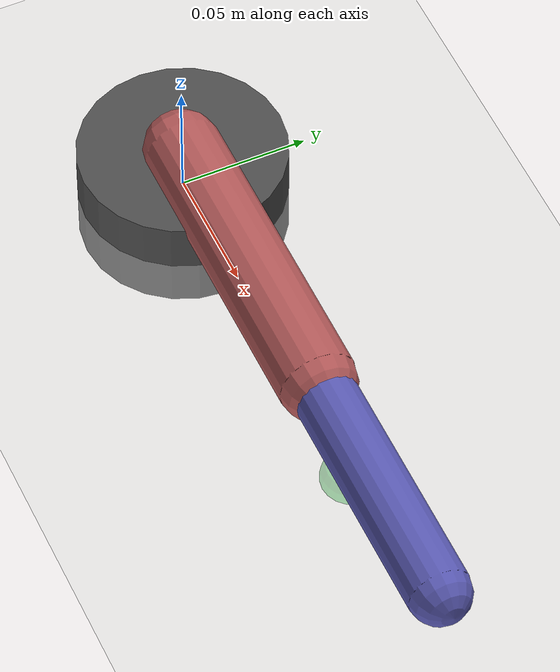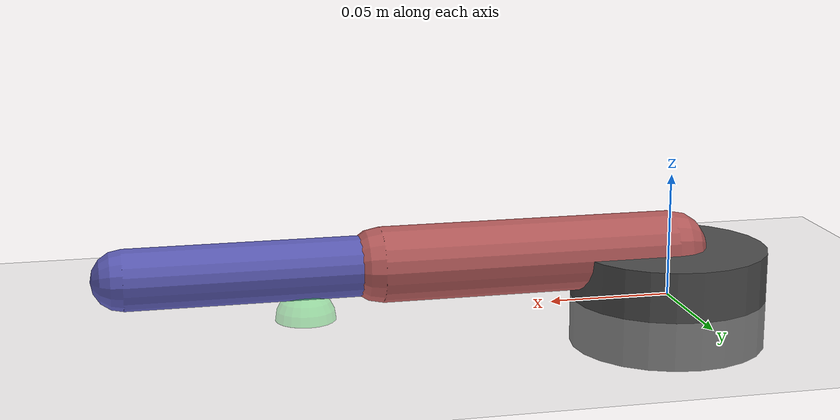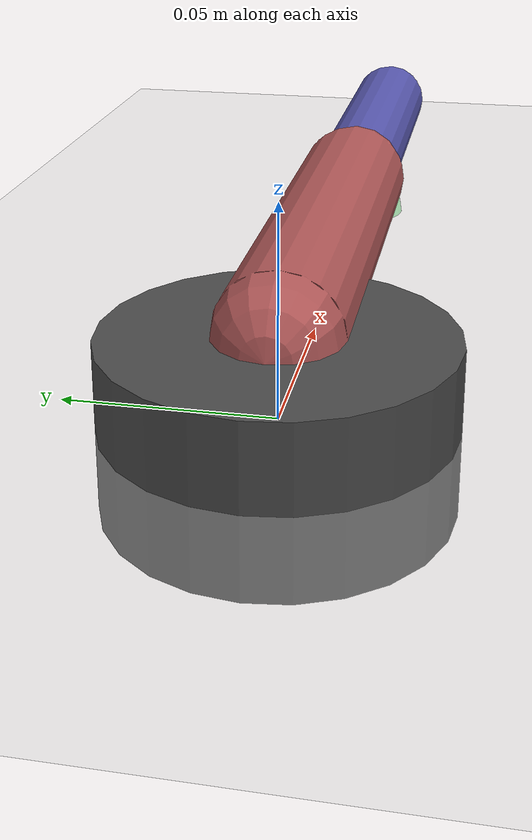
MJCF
<mujoco model="two_joint_arm">
  <option gravity="0 0 0" timestep="0.002"/>

  <worldbody>
    <light pos="0 0 1" dir="0 0 -1"/>
    <geom type="plane" size="0.35 0.35 0.05" rgba="0.85 0.85 0.85 1" contype="0" conaffinity="0"/>
    <camera name="overhead" pos="0 0 0.55" xyaxes="1 0 0 0 1 0"/>

    <body name="base" pos="0 0 0">
      <geom type="cylinder" size="0.04 0.02" rgba="0.3 0.3 0.3 1"
            contype="0" conaffinity="0"/>
      <body name="upper_arm" pos="0 0 0.02">
        <joint name="shoulder" type="hinge" axis="0 0 1" range="-170 170"
               damping="0.5" armature="0.01"/>
        <geom type="capsule" fromto="0 0 0 0.12 0 0" size="0.015" rgba="0.7 0.35 0.35 1"/>
        <body name="forearm" pos="0.12 0 0">
          <joint name="elbow" type="hinge" axis="0 0 1" range="-170 170"
                 damping="0.5" armature="0.01"/>
          <geom type="capsule" fromto="0 0 0 0.10 0 0" size="0.012" rgba="0.35 0.35 0.7 1"/>
          <site name="end_effector" pos="0.10 0 0" size="0.008" rgba="0.95 0.9 0.2 1"/>
        </body>
      </body>
    </body>

    <body name="target" mocap="true" pos="0.15 0 0">
      <geom type="sphere" size="0.012" rgba="0.15 0.8 0.25 0.4" contype="0" conaffinity="0"/>
    </body>
  </worldbody>

  <actuator>
    <motor joint="shoulder" ctrlrange="-1 1" gear="5"/>
    <motor joint="elbow" ctrlrange="-1 1" gear="5"/>
  </actuator>
</mujoco>
